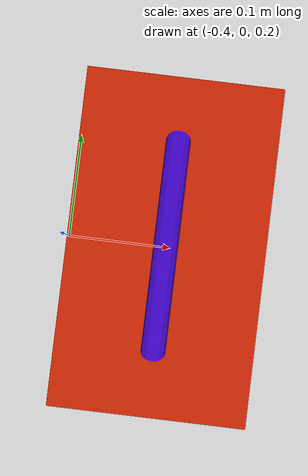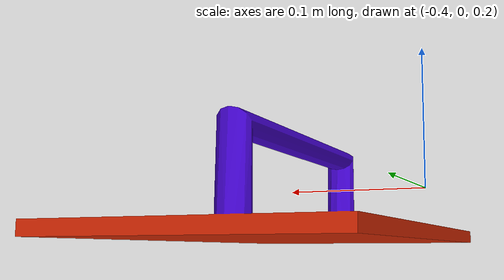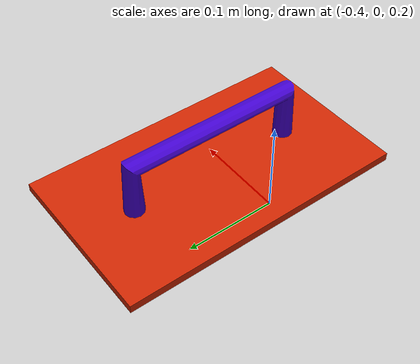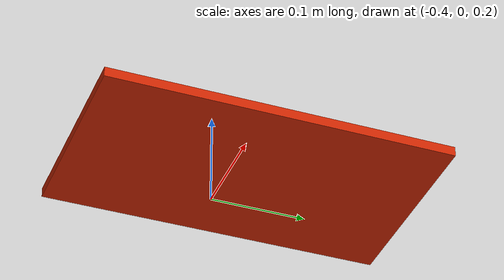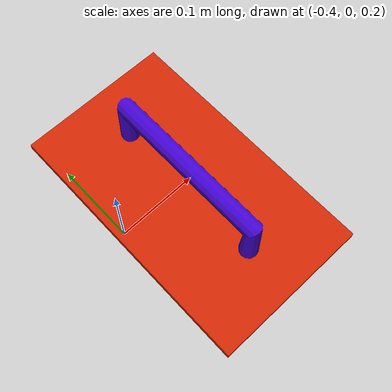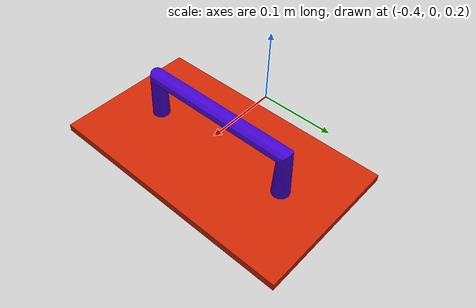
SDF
<?xml version="1.0" ?>
<sdf version="1.5">
  <model name="whirlpool_bin_lid">
    <static>true</static>
    <link name="base_link">

      <collision name="collision">
        <pose>0 0 0 0 0 0</pose>
        <geometry>
          <mesh>
            <uri>model://whirlpool_bin_lid/meshes/whirlpool_bin_lid.dae</uri>
          </mesh>
        </geometry>
      </collision>

      <visual name="visual">
        <cast_shadows>true</cast_shadows>
        <pose>0 0 0 0 0 0</pose>
        <geometry>
          <mesh>
            <uri>model://whirlpool_bin_lid/meshes/whirlpool_bin_lid.dae</uri>
          </mesh>
        </geometry>
      </visual>
    </link>
  </model>
</sdf>
